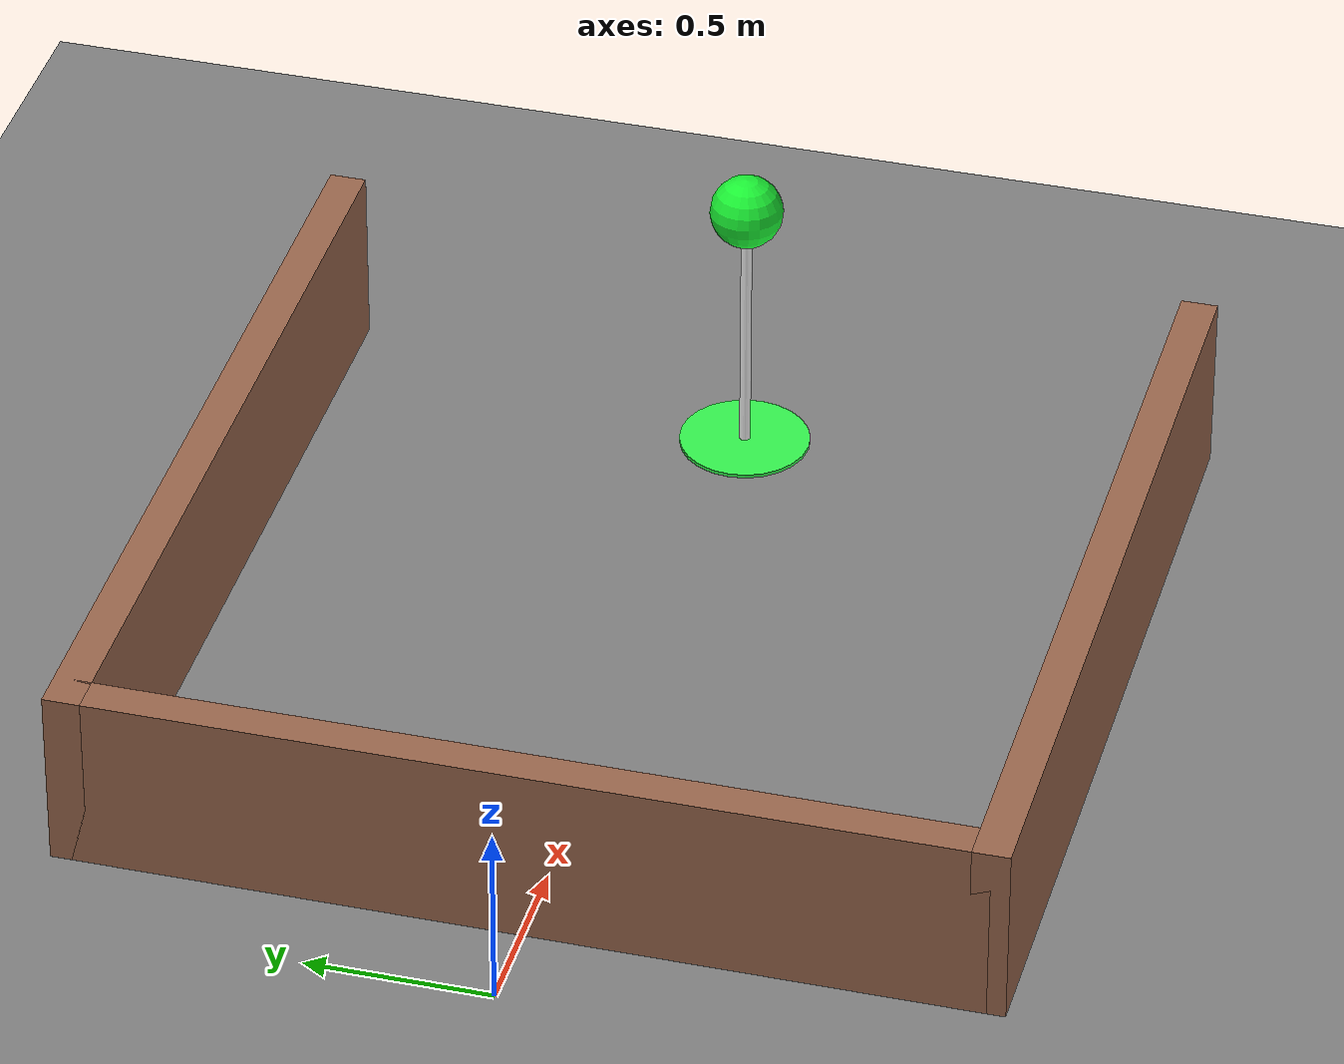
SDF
<?xml version="1.0" ?>
<sdf version="1.9">
  <world name="bug_hard">

    <physics name="1ms" type="ignored">
      <max_step_size>0.001</max_step_size>
      <real_time_factor>1.0</real_time_factor>
    </physics>

    <plugin filename="gz-sim-physics-system"           name="gz::sim::systems::Physics"/>
    <plugin filename="gz-sim-user-commands-system"     name="gz::sim::systems::UserCommands"/>
    <plugin filename="gz-sim-scene-broadcaster-system" name="gz::sim::systems::SceneBroadcaster"/>
    <plugin filename="gz-sim-sensors-system"           name="gz::sim::systems::Sensors">
      <render_engine>ogre2</render_engine>
    </plugin>

    <scene>
      <ambient>0.4 0.4 0.4 1</ambient>
      <background>0.7 0.7 0.85 1</background>
      <shadows>true</shadows>
    </scene>

    <light type="directional" name="sun">
      <pose>0 0 10 0 0 0</pose>
      <diffuse>1 1 1 1</diffuse>
      <specular>0.2 0.2 0.2 1</specular>
      <direction>-0.3 -0.3 -1</direction>
      <cast_shadows>true</cast_shadows>
    </light>

    <model name="ground_plane">
      <static>true</static>
      <link name="link">
        <collision name="col">
          <geometry><plane><normal>0 0 1</normal><size>50 50</size></plane></geometry>
        </collision>
        <visual name="vis">
          <geometry><plane><normal>0 0 1</normal><size>50 50</size></plane></geometry>
          <material>
            <ambient>0.3 0.3 0.3 1</ambient>
            <diffuse>0.5 0.5 0.5 1</diffuse>
          </material>
        </visual>
      </link>
    </model>

    <!-- Bandera 3D del goal en (2.5, 0) dentro del bolsillo de la U -->
    <include>
      <name>goal_visual</name>
      <uri>model://goal_flag</uri>
      <pose>2.5 0.0 0 0 0 0</pose>
    </include>

    <!-- Paredes formando una "U" alrededor del goal -->
    <model name="wall_top">
      <static>true</static>
      <pose>1.5 1.2 0.25 0 0 0</pose>
      <link name="link">
        <collision name="col">
          <geometry><box><size>2.5 0.1 0.5</size></box></geometry>
        </collision>
        <visual name="vis">
          <geometry><box><size>2.5 0.1 0.5</size></box></geometry>
          <material>
            <ambient>0.4 0.3 0.2 1</ambient>
            <diffuse>0.6 0.4 0.3 1</diffuse>
          </material>
        </visual>
      </link>
    </model>

    <model name="wall_bottom">
      <static>true</static>
      <pose>1.5 -1.2 0.25 0 0 0</pose>
      <link name="link">
        <collision name="col">
          <geometry><box><size>2.5 0.1 0.5</size></box></geometry>
        </collision>
        <visual name="vis">
          <geometry><box><size>2.5 0.1 0.5</size></box></geometry>
          <material>
            <ambient>0.4 0.3 0.2 1</ambient>
            <diffuse>0.6 0.4 0.3 1</diffuse>
          </material>
        </visual>
      </link>
    </model>

    <model name="wall_back">
      <static>true</static>
      <pose>0.3 0.0 0.25 0 0 0</pose>
      <link name="link">
        <collision name="col">
          <geometry><box><size>0.1 2.4 0.5</size></box></geometry>
        </collision>
        <visual name="vis">
          <geometry><box><size>0.1 2.4 0.5</size></box></geometry>
          <material>
            <ambient>0.4 0.3 0.2 1</ambient>
            <diffuse>0.6 0.4 0.3 1</diffuse>
          </material>
        </visual>
      </link>
    </model>

    <gui fullscreen="0">
      <camera name="user_camera">
        <pose>-4 -4 6 0 0.7 0.78</pose>
        <view_controller>orbit</view_controller>
      </camera>
    </gui>
  </world>
</sdf>

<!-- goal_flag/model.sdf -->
<sdf version="1.9">
  <model name="goal_flag">
    <static>true</static>
    <self_collide>false</self_collide>

    <link name="link">
      <laser_retro>0.0</laser_retro>

      <!-- Disco de base en el piso para ver el "punto exacto" del goal -->
      <visual name="base_disc">
        <pose>0 0 0.005 0 0 0</pose>
        <cast_shadows>false</cast_shadows>
        <geometry>
          <cylinder>
            <radius>0.18</radius>
            <length>0.01</length>
          </cylinder>
        </geometry>
        <material>
          <ambient>0.10 0.80 0.20 1</ambient>
          <diffuse>0.20 0.95 0.30 1</diffuse>
          <specular>0.30 1.00 0.40 1</specular>
          <emissive>0.05 0.50 0.10 1</emissive>
        </material>
      </visual>

      <!-- Poste blanco delgado -->
      <visual name="pole">
        <pose>0 0 0.35 0 0 0</pose>
        <cast_shadows>false</cast_shadows>
        <geometry>
          <cylinder>
            <radius>0.015</radius>
            <length>0.70</length>
          </cylinder>
        </geometry>
        <material>
          <ambient>0.85 0.85 0.85 1</ambient>
          <diffuse>0.95 0.95 0.95 1</diffuse>
          <specular>1.00 1.00 1.00 1</specular>
        </material>
      </visual>

      <!-- Esfera verde brillante arriba del poste -->
      <visual name="sphere">
        <pose>0 0 0.75 0 0 0</pose>
        <cast_shadows>false</cast_shadows>
        <geometry>
          <sphere>
            <radius>0.10</radius>
          </sphere>
        </geometry>
        <material>
          <ambient>0.05 0.70 0.10 1</ambient>
          <diffuse>0.10 0.95 0.20 1</diffuse>
          <specular>0.30 1.00 0.40 1</specular>
          <emissive>0.10 0.60 0.15 1</emissive>
        </material>
      </visual>

    </link>
  </model>
</sdf>
